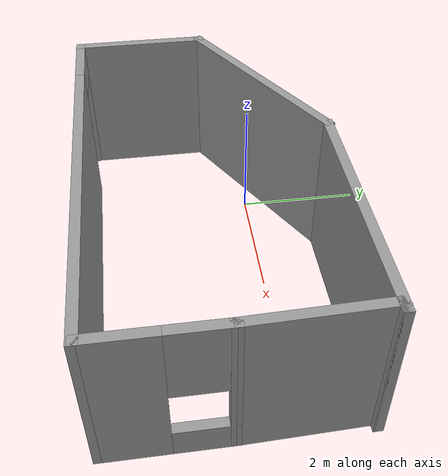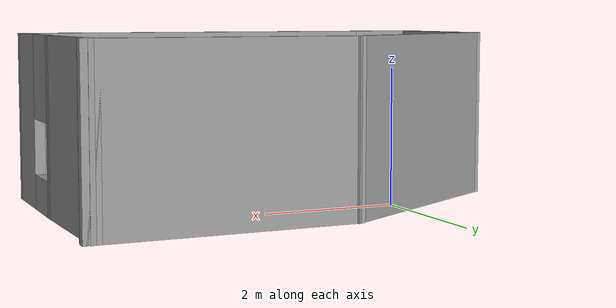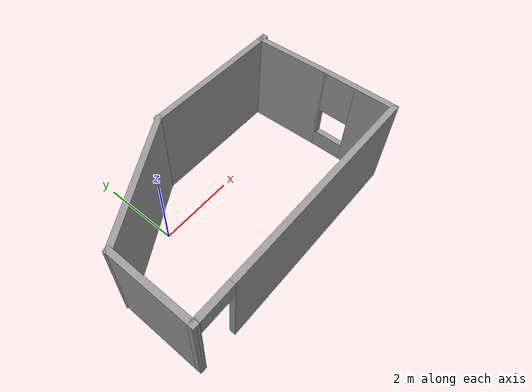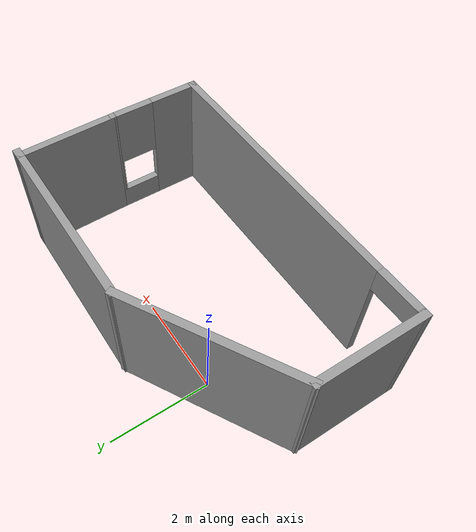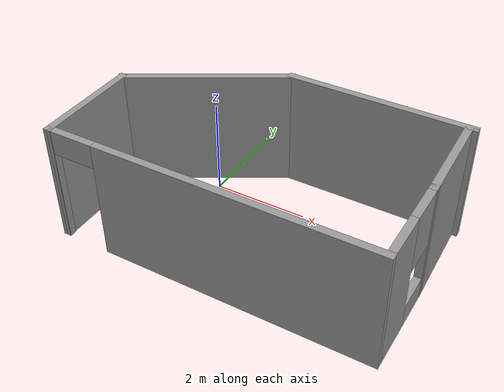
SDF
<?xml version='1.0'?>
<sdf version='1.7'>
  <model name='my_room'>
    <pose>1.49687 -0.808831 0 0 -0 0</pose>
    <link name='Wall_0'>
      <pose>-0.011867 -1.89617 0 0 -0 0.001527</pose>
      <visual name='Wall_0_Visual_0'>
        <pose>-3.26753 0 1.25 0 -0 0</pose>
        <geometry>
          <box>
            <size>0.165057 0.15 2.5</size>
          </box>
        </geometry>
        <material>
          <script>
            <uri>file://media/materials/scripts/gazebo.material</uri>
            <name>Gazebo/Grey</name>
          </script>
          <ambient>1 1 1 1</ambient>
        </material>
        <meta>
          <layer>0</layer>
        </meta>
      </visual>
      <collision name='Wall_0_Collision_0'>
        <geometry>
          <box>
            <size>0.165057 0.15 2.5</size>
          </box>
        </geometry>
        <pose>-3.26753 0 1.25 0 -0 0</pose>
      </collision>
      <visual name='Wall_0_Visual_1'>
        <pose>0.532528 0 1.25 0 -0 0</pose>
        <geometry>
          <box>
            <size>5.63507 0.15 2.5</size>
          </box>
        </geometry>
        <material>
          <script>
            <uri>file://media/materials/scripts/gazebo.material</uri>
            <name>Gazebo/Grey</name>
          </script>
          <ambient>1 1 1 1</ambient>
        </material>
        <meta>
          <layer>0</layer>
        </meta>
      </visual>
      <collision name='Wall_0_Collision_1'>
        <geometry>
          <box>
            <size>5.63507 0.15 2.5</size>
          </box>
        </geometry>
        <pose>0.532528 0 1.25 0 -0 0</pose>
      </collision>
      <visual name='Wall_0_Visual_2'>
        <pose>-2.73501 0 2.25 0 -0 0</pose>
        <geometry>
          <box>
            <size>0.9 0.15 0.5</size>
          </box>
        </geometry>
        <material>
          <script>
            <uri>file://media/materials/scripts/gazebo.material</uri>
            <name>Gazebo/Grey</name>
          </script>
          <ambient>1 1 1 1</ambient>
        </material>
        <meta>
          <layer>0</layer>
        </meta>
      </visual>
      <collision name='Wall_0_Collision_2'>
        <geometry>
          <box>
            <size>0.9 0.15 0.5</size>
          </box>
        </geometry>
        <pose>-2.73501 0 2.25 0 -0 0</pose>
      </collision>
    </link>
    <link name='Wall_1'>
      <pose>3.26313 -0.970495 0 0 -0 1.5708</pose>
      <visual name='Wall_1_Visual_0'>
        <pose>-0.458173 0 1.25 0 -0 0</pose>
        <geometry>
          <box>
            <size>1.035 0.15 2.5</size>
          </box>
        </geometry>
        <material>
          <script>
            <uri>file://media/materials/scripts/gazebo.material</uri>
            <name>Gazebo/Grey</name>
          </script>
          <ambient>1 1 1 1</ambient>
        </material>
        <meta>
          <layer>0</layer>
        </meta>
      </visual>
      <collision name='Wall_1_Collision_0'>
        <geometry>
          <box>
            <size>1.035 0.15 2.5</size>
          </box>
        </geometry>
        <pose>-0.458173 0 1.25 0 -0 0</pose>
      </collision>
      <visual name='Wall_1_Visual_1'>
        <pose>0.5175 0 0.25 0 -0 0</pose>
        <geometry>
          <box>
            <size>0.916347 0.15 0.5</size>
          </box>
        </geometry>
        <material>
          <script>
            <uri>file://media/materials/scripts/gazebo.material</uri>
            <name>Gazebo/Grey</name>
          </script>
          <ambient>1 1 1 1</ambient>
        </material>
        <meta>
          <layer>0</layer>
        </meta>
      </visual>
      <collision name='Wall_1_Collision_1'>
        <geometry>
          <box>
            <size>0.916347 0.15 0.5</size>
          </box>
        </geometry>
        <pose>0.5175 0 0.25 0 -0 0</pose>
      </collision>
      <visual name='Wall_1_Visual_2'>
        <pose>0.9175 0 1.5 0 -0 0</pose>
        <geometry>
          <box>
            <size>0.116347 0.15 2</size>
          </box>
        </geometry>
        <material>
          <script>
            <uri>file://media/materials/scripts/gazebo.material</uri>
            <name>Gazebo/Grey</name>
          </script>
          <ambient>1 1 1 1</ambient>
        </material>
        <meta>
          <layer>0</layer>
        </meta>
      </visual>
      <collision name='Wall_1_Collision_2'>
        <geometry>
          <box>
            <size>0.116347 0.15 2</size>
          </box>
        </geometry>
        <pose>0.9175 0 1.5 0 -0 0</pose>
      </collision>
      <visual name='Wall_1_Visual_3'>
        <pose>0.459327 0 1.9 0 -0 0</pose>
        <geometry>
          <box>
            <size>0.8 0.15 1.2</size>
          </box>
        </geometry>
        <material>
          <script>
            <uri>file://media/materials/scripts/gazebo.material</uri>
            <name>Gazebo/Grey</name>
          </script>
          <ambient>1 1 1 1</ambient>
        </material>
        <meta>
          <layer>0</layer>
        </meta>
      </visual>
      <collision name='Wall_1_Collision_3'>
        <geometry>
          <box>
            <size>0.8 0.15 1.2</size>
          </box>
        </geometry>
        <pose>0.459327 0 1.9 0 -0 0</pose>
      </collision>
    </link>
    <link name='Wall_3'>
      <collision name='Wall_3_Collision'>
        <geometry>
          <box>
            <size>2.25 0.15 2.5</size>
          </box>
        </geometry>
        <pose>0 0 1.25 0 -0 0</pose>
      </collision>
      <visual name='Wall_3_Visual'>
        <pose>0 0 1.25 0 -0 0</pose>
        <geometry>
          <box>
            <size>2.25 0.15 2.5</size>
          </box>
        </geometry>
        <material>
          <script>
            <uri>file://media/materials/scripts/gazebo.material</uri>
            <name>Gazebo/Grey</name>
          </script>
          <ambient>1 1 1 1</ambient>
        </material>
        <meta>
          <layer>0</layer>
        </meta>
      </visual>
      <pose>-3.28687 -0.851169 0 0 -0 1.5708</pose>
    </link>
    <link name='Wall_4'>
      <collision name='Wall_4_Collision'>
        <geometry>
          <box>
            <size>3.5 0.15 2.5</size>
          </box>
        </geometry>
        <pose>0 0 1.25 0 -0 0</pose>
      </collision>
      <visual name='Wall_4_Visual'>
        <pose>0 0 1.25 0 -0 0</pose>
        <geometry>
          <box>
            <size>3.5 0.15 2.5</size>
          </box>
        </geometry>
        <material>
          <script>
            <uri>file://media/materials/scripts/gazebo.material</uri>
            <name>Gazebo/Grey</name>
          </script>
          <ambient>1 1 1 1</ambient>
        </material>
        <meta>
          <layer>0</layer>
        </meta>
      </visual>
      <pose>-1.83627 1.03633 0 0 -0 0.523599</pose>
    </link>
    <link name='Wall_5'>
      <collision name='Wall_5_Collision'>
        <geometry>
          <box>
            <size>3.75 0.15 2.5</size>
          </box>
        </geometry>
        <pose>0 0 1.25 0 -0 0</pose>
      </collision>
      <visual name='Wall_5_Visual'>
        <pose>0 0 1.25 0 -0 0</pose>
        <geometry>
          <box>
            <size>3.75 0.15 2.5</size>
          </box>
        </geometry>
        <material>
          <script>
            <uri>file://media/materials/scripts/gazebo.material</uri>
            <name>Gazebo/Grey</name>
          </script>
          <ambient>1 1 1 1</ambient>
        </material>
        <meta>
          <layer>0</layer>
        </meta>
      </visual>
      <pose>1.41432 1.87383 0 0 -0 0</pose>
    </link>
    <link name='Wall_6'>
      <collision name='Wall_6_Collision'>
        <geometry>
          <box>
            <size>0.25 0.15 2.5</size>
          </box>
        </geometry>
        <pose>0 0 1.25 0 -0 0</pose>
      </collision>
      <visual name='Wall_6_Visual'>
        <pose>0 0 1.25 0 -0 0</pose>
        <geometry>
          <box>
            <size>0.25 0.15 2.5</size>
          </box>
        </geometry>
        <material>
          <script>
            <uri>file://media/materials/scripts/gazebo.material</uri>
            <name>Gazebo/Grey</name>
          </script>
          <ambient>1 1 1 1</ambient>
        </material>
        <meta>
          <layer>0</layer>
        </meta>
      </visual>
      <pose>3.26432 1.87383 0 0 -0 0</pose>
    </link>
    <link name='Wall_7'>
      <collision name='Wall_7_Collision'>
        <geometry>
          <box>
            <size>0.25 0.15 2.5</size>
          </box>
        </geometry>
        <pose>0 0 1.25 0 -0 0</pose>
      </collision>
      <visual name='Wall_7_Visual'>
        <pose>0 0 1.25 0 -0 0</pose>
        <geometry>
          <box>
            <size>0.25 0.15 2.5</size>
          </box>
        </geometry>
        <material>
          <script>
            <uri>file://media/materials/scripts/gazebo.material</uri>
            <name>Gazebo/Grey</name>
          </script>
          <ambient>1 1 1 1</ambient>
        </material>
        <meta>
          <layer>0</layer>
        </meta>
      </visual>
      <pose>3.26432 1.87383 0 0 -0 3.14159</pose>
    </link>
    <link name='Wall_8'>
      <collision name='Wall_8_Collision'>
        <geometry>
          <box>
            <size>2.09427 0.15 2.5</size>
          </box>
        </geometry>
        <pose>0 0 1.25 0 -0 0</pose>
      </collision>
      <visual name='Wall_8_Visual'>
        <pose>0 0 1.25 0 -0 0</pose>
        <geometry>
          <box>
            <size>2.09427 0.15 2.5</size>
          </box>
        </geometry>
        <material>
          <script>
            <uri>file://media/materials/scripts/gazebo.material</uri>
            <name>Gazebo/Grey</name>
          </script>
          <ambient>1 1 1 1</ambient>
        </material>
        <meta>
          <layer>0</layer>
        </meta>
      </visual>
      <pose>3.23873 0.902005 0 0 -0 -1.54569</pose>
    </link>
    <static>1</static>
  </model>
</sdf>
